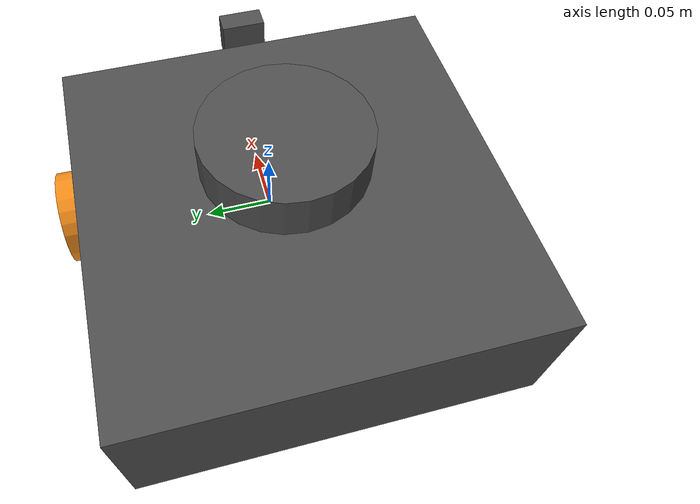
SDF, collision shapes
<sdf version='1.6'>
  <model name='robot'>
    <link name='base_footprint'>
      <pose frame=''>0 0 0 0 -0 0</pose>
      <inertial>
        <pose frame=''>-0.006056 0 0.019264 0 -0 0</pose>
        <mass>1.49691</mass>
        <inertia>
          <ixx>0.0133097</ixx>
          <ixy>-4.75766e-05</ixy>
          <ixz>0.000910646</ixz>
          <iyy>0.0139133</iyy>
          <iyz>-3.54223e-06</iyz>
          <izz>0.018379</izz>
        </inertia>
      </inertial>
      <collision name='base_footprint_fixed_joint_lump__base_link_collision'>
        <pose frame=''>-0.064 0 0.057 0 -0 0</pose>
        <geometry>
          <box>
            <size>0.266 0.266 0.094</size>
          </box>
        </geometry>
        <surface>
          <contact>
            <ode/>
          </contact>
          <friction>
            <ode/>
          </friction>
        </surface>
      </collision>
      <collision name='base_footprint_fixed_joint_lump__camera_link_collision_1'>
        <pose frame=''>0.078 0 0.107 0 -0 0</pose>
        <geometry>
          <box>
            <size>0.015 0.03 0.027</size>
          </box>
        </geometry>
      </collision>
      <collision name='base_footprint_fixed_joint_lump__caster_back_left_link_collision_2'>
        <pose frame=''>-0.177 0.064001 0.005 -1.57 0 0</pose>
        <geometry>
          <box>
            <size>0.03 0.009 0.02</size>
          </box>
        </geometry>
        <surface>
          <contact>
            <ode>
              <kp>1e+06</kp>
              <kd>100</kd>
              <max_vel>1</max_vel>
              <min_depth>0.001</min_depth>
            </ode>
          </contact>
          <friction>
            <ode>
              <mu>0.1</mu>
              <mu2>0.1</mu2>
            </ode>
          </friction>
        </surface>
      </collision>
      <collision name='base_footprint_fixed_joint_lump__caster_back_right_link_collision_3'>
        <pose frame=''>-0.177 -0.063999 0.005 -1.57 0 0</pose>
        <geometry>
          <box>
            <size>0.03 0.009 0.02</size>
          </box>
        </geometry>
        <surface>
          <contact>
            <ode>
              <kp>1e+06</kp>
              <kd>100</kd>
              <max_vel>1</max_vel>
              <min_depth>0.001</min_depth>
            </ode>
          </contact>
          <friction>
            <ode>
              <mu>0.1</mu>
              <mu2>0.1</mu2>
            </ode>
          </friction>
        </surface>
      </collision>
      <collision name='base_footprint_fixed_joint_lump__base_scan_collision_4'>
        <pose frame=''>-0.049 0 0.1255 0 -0 0</pose>
        <geometry>
          <cylinder>
            <length>0.0315</length>
            <radius>0.055</radius>
          </cylinder>
        </geometry>
        <surface>
          <contact>
            <ode/>
          </contact>
          <friction>
            <ode/>
          </friction>
        </surface>
      </collision>
      <visual name='base_footprint_fixed_joint_lump__base_link_visual'>
        <pose frame=''>-0.064 0 0.01 0 -0 0</pose>
        <geometry>
          <mesh>
            <scale>0.001 0.001 0.001</scale>
            <uri>model://turtlebot3_description/meshes/bases/waffle_pi_base.stl</uri>
          </mesh>
        </geometry>
        <material>
          <script>
            <name>Gazebo/DarkGrey</name>
            <uri>file://media/materials/scripts/gazebo.material</uri>
          </script>
        </material>
      </visual>
      <visual name='base_footprint_fixed_joint_lump__flame_left_link_visual_1'>
        <pose frame=''>-0.169 0.12 0.06 3.14159 1.57079 -1.57159</pose>
        <geometry>
          <mesh>
            <scale>0.002 0.0035 0.005</scale>
            <uri>model://p_g5_description/mesh/flaming_gear_keychain.stl</uri>
          </mesh>
        </geometry>
        <material>
          <script>
            <name>Gazebo/Orange</name>
            <uri>file://media/materials/scripts/gazebo.material</uri>
          </script>
        </material>
      </visual>
      <visual name='base_footprint_fixed_joint_lump__flame_right_link_visual_2'>
        <pose frame=''>-0.169 -0.12 0.054 3.14159 -1.57079 -1.57159</pose>
        <geometry>
          <mesh>
            <scale>0.002 0.0035 0.005</scale>
            <uri>model://p_g5_description/mesh/flaming_gear_keychain.stl</uri>
          </mesh>
        </geometry>
        <material>
          <script>
            <name>Gazebo/Orange</name>
            <uri>file://media/materials/scripts/gazebo.material</uri>
          </script>
        </material>
      </visual>
      <visual name='base_footprint_fixed_joint_lump__base_scan_visual_3'>
        <pose frame=''>-0.064 0 0.132 0 -0 0</pose>
        <geometry>
          <mesh>
            <scale>0.001 0.001 0.001</scale>
            <uri>model://turtlebot3_description/meshes/sensors/lds.stl</uri>
          </mesh>
        </geometry>
        <material>
          <script>
            <name>Gazebo/Orange</name>
            <uri>file://media/materials/scripts/gazebo.material</uri>
          </script>
        </material>
      </visual>
      <velocity_decay/>
      <velocity_decay/>
      <sensor name='base_link' type='contact'>
        <update_rate>1000</update_rate>
        <always_on>1</always_on>
        <contact>
          <collision>base_footprint_fixed_joint_lump__base_link_collision_collision</collision>
          <topic>__default_topic__</topic>
        </contact>
        <plugin name='base_link_contact_sensor_plugin' filename='libgazebo_ros_bumper.so'>
          <bumperTopicName>contact</bumperTopicName>
          <frameName>Orange/world</frameName>
        </plugin>
        <pose frame=''>0 0 0.01 0 -0 0</pose>
      </sensor>
      <velocity_decay/>
      <velocity_decay/>
      <velocity_decay/>
      <sensor name='Pi Camera' type='camera'>
        <always_on>1</always_on>
        <visualize>0</visualize>
        <camera name='__default__'>
          <horizontal_fov>1.0856</horizontal_fov>
          <image>
            <width>1680</width>
            <height>1050</height>
            <format>R8G8B8</format>
          </image>
          <clip>
            <near>0.03</near>
            <far>100</far>
          </clip>
        </camera>
        <plugin name='camera_controller' filename='libgazebo_ros_camera.so'>
          <alwaysOn>1</alwaysOn>
          <updateRate>30.0</updateRate>
          <cameraName>camera</cameraName>
          <frameName>camera_rgb_optical_frame</frameName>
          <imageTopicName>rgb/image_raw</imageTopicName>
          <cameraInfoTopicName>rgb/camera_info</cameraInfoTopicName>
          <hackBaseline>0.07</hackBaseline>
          <distortionK1>0.0</distortionK1>
          <distortionK2>0.0</distortionK2>
          <distortionK3>0.0</distortionK3>
          <distortionT1>0.0</distortionT1>
          <distortionT2>0.0</distortionT2>
        </plugin>
        <pose frame=''>0.076 0 0.103 0 -0 0</pose>
      </sensor>
      <velocity_decay/>
      <velocity_decay/>
      <velocity_decay/>
      <sensor name='imu' type='imu'>
        <always_on>1</always_on>
        <visualize>0</visualize>
        <pose frame=''>0 0 0.078 0 -0 0</pose>
      </sensor>
      <gravity>1</gravity>
      <velocity_decay/>
      <sensor name='lds_lfcd_sensor' type='ray'>
        <visualize>0</visualize>
        <update_rate>5</update_rate>
        <ray>
          <scan>
            <horizontal>
              <samples>360</samples>
              <resolution>1</resolution>
              <min_angle>0</min_angle>
              <max_angle>6.28319</max_angle>
            </horizontal>
          </scan>
          <range>
            <min>0.12</min>
            <max>3.5</max>
            <resolution>0.015</resolution>
          </range>
          <noise>
            <type>gaussian</type>
            <mean>0</mean>
            <stddev>0.01</stddev>
          </noise>
        </ray>
        <plugin name='gazebo_ros_lds_lfcd_controller' filename='libgazebo_ros_laser.so'>
          <topicName>scan</topicName>
          <frameName>base_scan</frameName>
        </plugin>
        <pose frame=''>-0.064 0 0.132 0 -0 0</pose>
      </sensor>
    </link>
    <link name='wheel_left_link'>
      <pose frame=''>0 0.144 0.033 -1.57 0 0</pose>
      <inertial>
        <pose frame=''>0 0 0 0 -0 0</pose>
        <mass>0.0284989</mass>
        <inertia>
          <ixx>1.11756e-05</ixx>
          <ixy>-4.23698e-11</ixy>
          <ixz>-5.93817e-09</ixz>
          <iyy>1.11924e-05</iyy>
          <iyz>-1.44001e-11</iyz>
          <izz>2.07126e-05</izz>
        </inertia>
      </inertial>
      <collision name='wheel_left_link_collision'>
        <pose frame=''>0 0 0 0 -0 0</pose>
        <geometry>
          <cylinder>
            <length>0.018</length>
            <radius>0.033</radius>
          </cylinder>
        </geometry>
        <surface>
          <contact>
            <ode>
              <kp>500000</kp>
              <kd>10</kd>
              <max_vel>0.1</max_vel>
              <min_depth>0.001</min_depth>
            </ode>
          </contact>
          <friction>
            <ode>
              <mu>0.1</mu>
              <mu2>0.1</mu2>
              <fdir1>1 0 0</fdir1>
            </ode>
          </friction>
        </surface>
      </collision>
      <visual name='wheel_left_link_visual'>
        <pose frame=''>0 0 0 1.57 -0 0</pose>
        <geometry>
          <mesh>
            <scale>0.001 0.001 0.001</scale>
            <uri>model://turtlebot3_description/meshes/wheels/left_tire.stl</uri>
          </mesh>
        </geometry>
        <material>
          <script>
            <name>Gazebo/Orange</name>
            <uri>file://media/materials/scripts/gazebo.material</uri>
          </script>
        </material>
      </visual>
      <gravity>1</gravity>
      <velocity_decay/>
    </link>
    <joint name='wheel_left_joint' type='revolute'>
      <child>wheel_left_link</child>
      <parent>base_footprint</parent>
      <axis>
        <xyz>0 1 0.000796</xyz>
        <limit>
          <lower>-1e+16</lower>
          <upper>1e+16</upper>
        </limit>
        <dynamics>
          <spring_reference>0</spring_reference>
          <spring_stiffness>0</spring_stiffness>
        </dynamics>
        <use_parent_model_frame>1</use_parent_model_frame>
      </axis>
    </joint>
    <link name='wheel_right_link'>
      <pose frame=''>0 -0.144 0.033 -1.57 0 0</pose>
      <inertial>
        <pose frame=''>0 0 0 0 -0 0</pose>
        <mass>0.0284989</mass>
        <inertia>
          <ixx>1.11756e-05</ixx>
          <ixy>-4.23698e-11</ixy>
          <ixz>-5.93817e-09</ixz>
          <iyy>1.11924e-05</iyy>
          <iyz>-1.44001e-11</iyz>
          <izz>2.07126e-05</izz>
        </inertia>
      </inertial>
      <collision name='wheel_right_link_collision'>
        <pose frame=''>0 0 0 0 -0 0</pose>
        <geometry>
          <cylinder>
            <length>0.018</length>
            <radius>0.033</radius>
          </cylinder>
        </geometry>
        <surface>
          <contact>
            <ode>
              <kp>500000</kp>
              <kd>10</kd>
              <max_vel>0.1</max_vel>
              <min_depth>0.001</min_depth>
            </ode>
          </contact>
          <friction>
            <ode>
              <mu>0.1</mu>
              <mu2>0.1</mu2>
              <fdir1>1 0 0</fdir1>
            </ode>
          </friction>
        </surface>
      </collision>
      <visual name='wheel_right_link_visual'>
        <pose frame=''>0 0 0 1.57 -0 0</pose>
        <geometry>
          <mesh>
            <scale>0.001 0.001 0.001</scale>
            <uri>model://turtlebot3_description/meshes/wheels/right_tire.stl</uri>
          </mesh>
        </geometry>
        <material>
          <script>
            <name>Gazebo/Orange</name>
            <uri>file://media/materials/scripts/gazebo.material</uri>
          </script>
        </material>
      </visual>
      <gravity>1</gravity>
      <velocity_decay/>
    </link>
    <joint name='wheel_right_joint' type='revolute'>
      <child>wheel_right_link</child>
      <parent>base_footprint</parent>
      <axis>
        <xyz>0 1 0.000796</xyz>
        <limit>
          <lower>-1e+16</lower>
          <upper>1e+16</upper>
        </limit>
        <dynamics>
          <spring_reference>0</spring_reference>
          <spring_stiffness>0</spring_stiffness>
        </dynamics>
        <use_parent_model_frame>1</use_parent_model_frame>
      </axis>
    </joint>
    <plugin name='turtlebot3_waffle_pi_controller' filename='libgazebo_ros_diff_drive.so'>
      <commandTopic>cmd_vel</commandTopic>
      <odometryTopic>odom</odometryTopic>
      <odometryFrame>odom</odometryFrame>
      <odometrySource>world</odometrySource>
      <publishOdomTF>1</publishOdomTF>
      <robotBaseFrame>base_footprint</robotBaseFrame>
      <publishWheelTF>0</publishWheelTF>
      <publishTf>1</publishTf>
      <publishWheelJointState>1</publishWheelJointState>
      <legacyMode>0</legacyMode>
      <updateRate>30</updateRate>
      <leftJoint>wheel_left_joint</leftJoint>
      <rightJoint>wheel_right_joint</rightJoint>
      <wheelSeparation>0.287</wheelSeparation>
      <wheelDiameter>0.066</wheelDiameter>
      <wheelAcceleration>1</wheelAcceleration>
      <wheelTorque>10</wheelTorque>
      <rosDebugLevel>na</rosDebugLevel>
    </plugin>
    <plugin name='turtlebot3_waffle_pi_controller' filename='libgazebo_ros_diff_drive.so'>
      <commandTopic>cmd_vel</commandTopic>
      <odometryTopic>odom</odometryTopic>
      <odometryFrame>odom</odometryFrame>
      <odometrySource>world</odometrySource>
      <publishOdomTF>1</publishOdomTF>
      <robotBaseFrame>base_footprint</robotBaseFrame>
      <publishWheelTF>0</publishWheelTF>
      <publishTf>1</publishTf>
      <publishWheelJointState>1</publishWheelJointState>
      <legacyMode>0</legacyMode>
      <updateRate>30</updateRate>
      <leftJoint>wheel_left_joint</leftJoint>
      <rightJoint>wheel_right_joint</rightJoint>
      <wheelSeparation>0.287</wheelSeparation>
      <wheelDiameter>0.066</wheelDiameter>
      <wheelAcceleration>1</wheelAcceleration>
      <wheelTorque>10</wheelTorque>
      <rosDebugLevel>na</rosDebugLevel>
    </plugin>
    <static>0</static>
    <plugin name='imu_plugin' filename='libgazebo_ros_imu.so'>
      <alwaysOn>1</alwaysOn>
      <topicName>imu</topicName>
      <serviceName>imu_service</serviceName>
      <gaussianNoise>0.0</gaussianNoise>
      <updateRate>200</updateRate>
      <imu>
        <noise>
          <type>gaussian</type>
          <rate>
            <mean>0.0</mean>
            <stddev>2e-4</stddev>
            <bias_mean>0.0000075</bias_mean>
            <bias_stddev>0.0000008</bias_stddev>
          </rate>
          <accel>
            <mean>0.0</mean>
            <stddev>1.7e-2</stddev>
            <bias_mean>0.1</bias_mean>
            <bias_stddev>0.001</bias_stddev>
          </accel>
        </noise>
      </imu>
      <bodyName>base_footprint</bodyName>
      <frameName>base_footprint</frameName>
      <xyzOffset>0 0 -0.156</xyzOffset>
      <rpyOffset>0 -0 0</rpyOffset>
    </plugin>
  </model>
</sdf>
